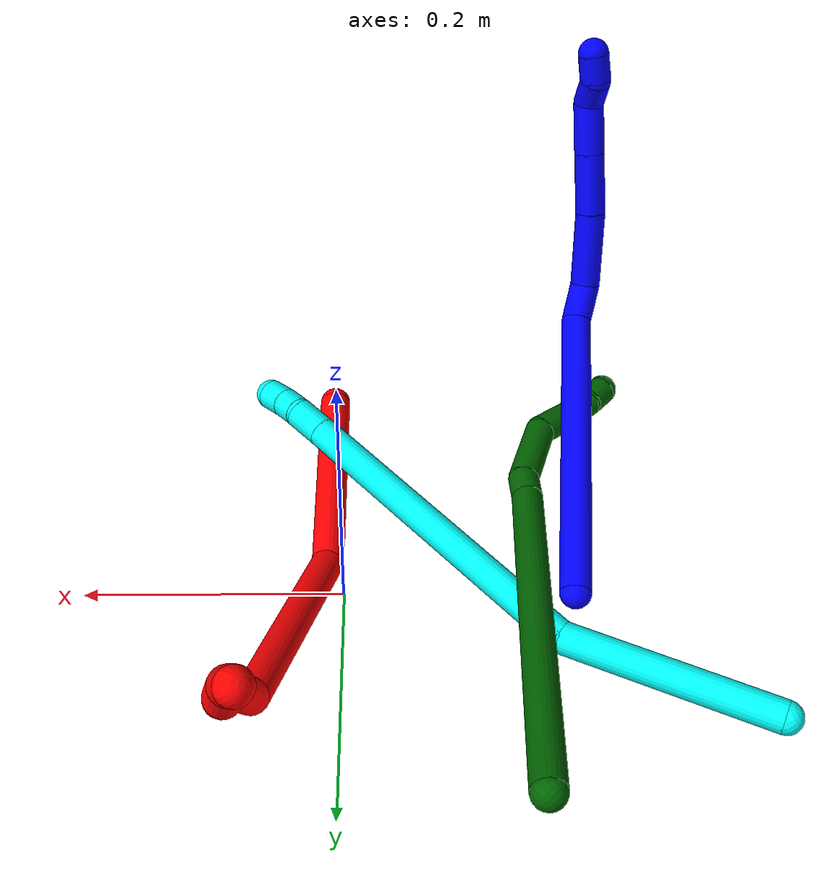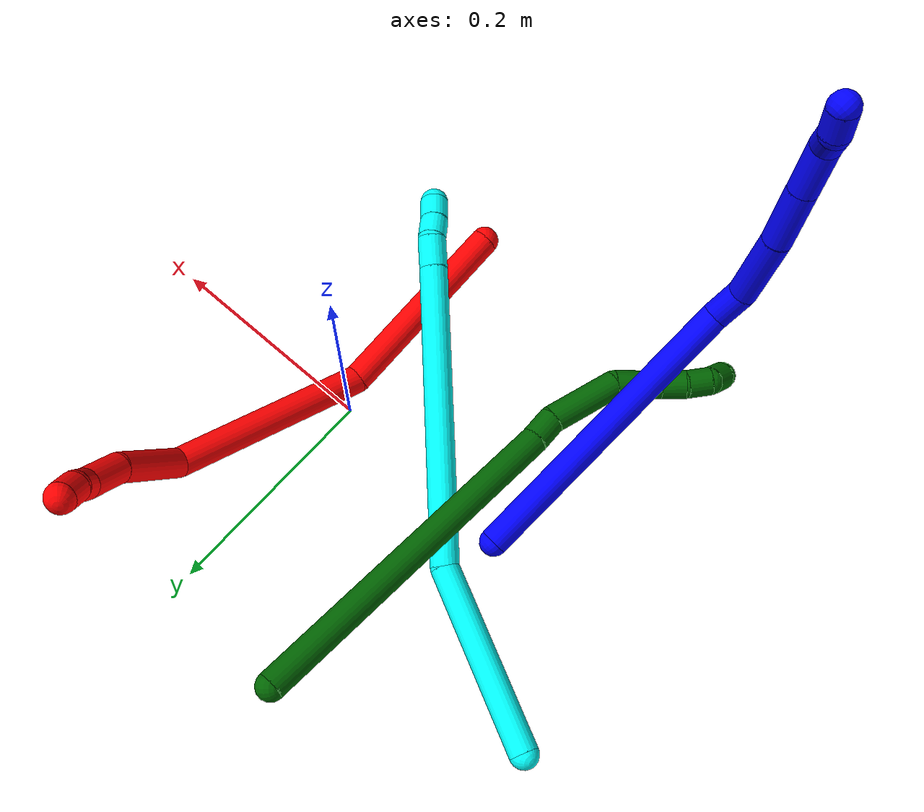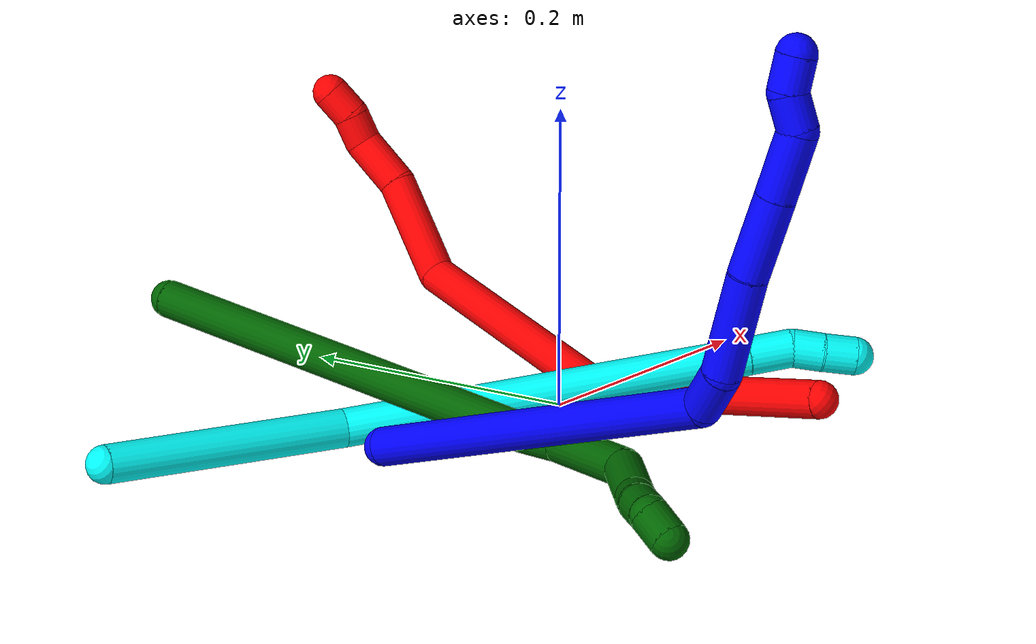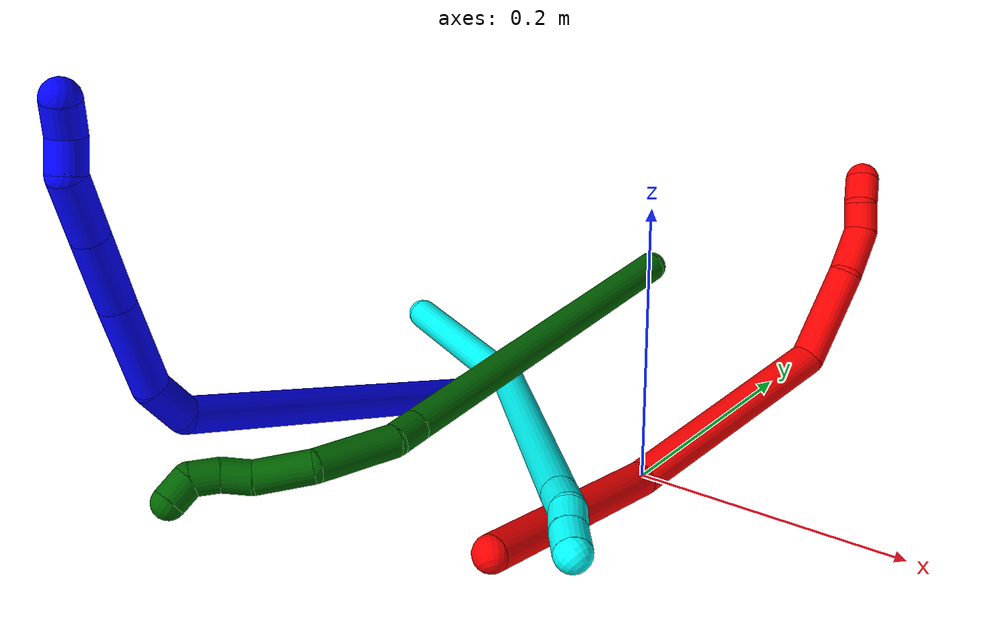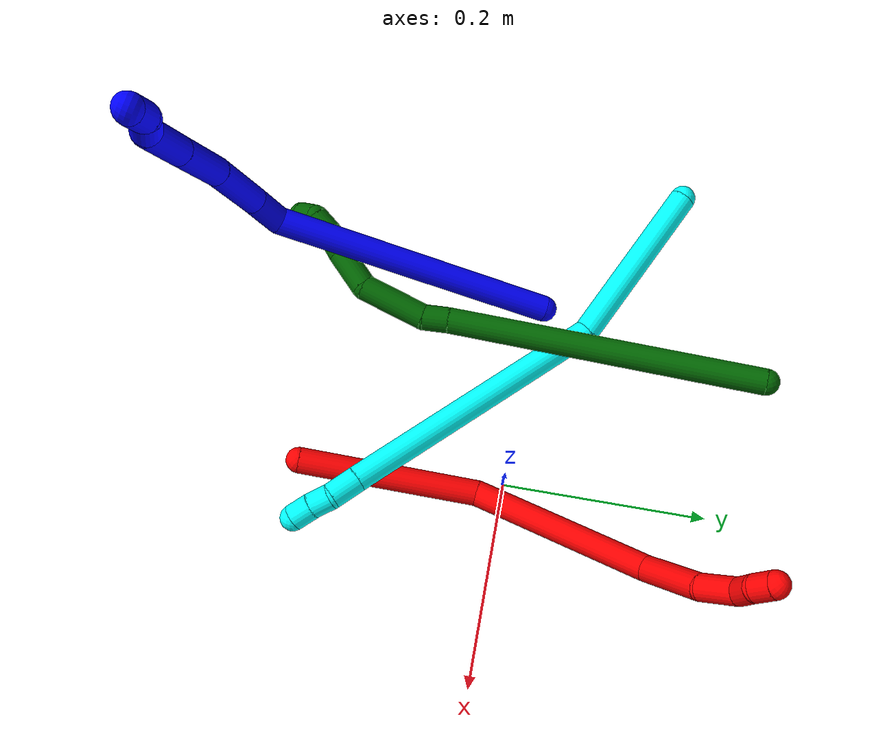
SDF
<sdf version="1.7">
 <world name="default">
  <model name="photoneo_s_sensor">
   <static>1</static>
   <pose>0 0 2 1.57079 1.57079 3.14159</pose>
   <link name="link">
    <inertial><mass>0.1</mass></inertial>
    <sensor name="sensor" type="depth">
     <update_rate>30</update_rate>
     <camera>
      <horizontal_fov>1.22</horizontal_fov>
      <image><width>1920</width><height>1200</height><format>B8G8R8</format></image>
      <clip><near>0.1</near><far>4</far></clip>
      <depth_camera><output>points</output></depth_camera>
     </camera>
     <plugin name="camera_plugin" filename="libgazebo_ros_depth_camera.so">
      <baseline>0.2</baseline>
      <alwaysOn>1</alwaysOn>
      <updateRate>0.0</updateRate>
      <cameraName>camera_ir</cameraName>
      <imageTopicName>/camera/color/image_raw</imageTopicName>
      <cameraInfoTopicName>/camera/color/camera_info</cameraInfoTopicName>
      <depthImageTopicName>/camera/depth/image_raw</depthImageTopicName>
      <depthImageCameraInfoTopicName>/camera/depth/camera_info</depthImageCameraInfoTopicName>
      <pointCloudTopicName>/camera/depth/points</pointCloudTopicName>
      <frameName>fr_optical</frameName>
      <pointCloudCutoff>0.1</pointCloudCutoff>
      <pointCloudCutoffMax>2.0</pointCloudCutoffMax>
      <distortionK1>0</distortionK1>
      <distortionK2>0</distortionK2>
      <distortionK3>0</distortionK3>
      <distortionT1>0</distortionT1>
      <distortionT2>0</distortionT2>
      <CxPrime>0</CxPrime>
      <Cx>0</Cx>
      <Cy>0</Cy>
      <focalLength>0</focalLength>
      <hackBaseline>0</hackBaseline>
     </plugin>
    </sensor>
   </link>
  </model>
  <model name="bin">
   <static>1</static>
   <link name="bottom">
    <collision name="collision-bottom">
     <pose>0 0 -0.01 0 -0 0</pose>
     <geometry><box><size>0.8 0.6 0.02</size></box></geometry>
     <surface>
      <friction><ode><mu>100</mu><mu2>100</mu2></ode></friction>
      <contact><collide_bitmask>65535</collide_bitmask></contact>
     </surface>
    </collision>
   </link>
   <link name="west_wall">
    <collision name="collision-west_wall">
     <pose>-0.41 0 0.1 0 -0 0</pose>
     <geometry><box><size>0.02 0.6 0.2</size></box></geometry>
     <surface>
      <friction><ode><mu>100</mu><mu2>100</mu2></ode></friction>
      <contact><collide_bitmask>65535</collide_bitmask></contact>
     </surface>
    </collision>
   </link>
   <link name="east_wall">
    <collision name="collision-east_wall">
     <pose>0.41 0 0.1 0 -0 0</pose>
     <geometry><box><size>0.02 0.6 0.2</size></box></geometry>
     <surface>
      <friction><ode><mu>100</mu><mu2>100</mu2></ode></friction>
      <contact><collide_bitmask>65535</collide_bitmask></contact>
     </surface>
    </collision>
   </link>
   <link name="south_wall">
    <collision name="collision-south_wall">
     <pose>0 -0.31 0.1 0 -0 0</pose>
     <geometry><box><size>0.8 0.02 0.2</size></box></geometry>
     <surface>
      <friction><ode><mu>100</mu><mu2>100</mu2></ode></friction>
      <contact><collide_bitmask>65535</collide_bitmask></contact>
     </surface>
    </collision>
   </link>
   <link name="north_wall">
    <collision name="collision-north_wall">
     <pose>0 0.31 0.1 0 -0 0</pose>
     <geometry><box><size>0.8 0.02 0.2</size></box></geometry>
     <surface>
      <friction><ode><mu>100</mu><mu2>100</mu2></ode></friction>
      <contact><collide_bitmask>65535</collide_bitmask></contact>
     </surface>
    </collision>
   </link>
  </model>
  <model name="1">
   <static>0</static>
   <link name="1">
    <collision name="collision-cylinder-e_1_1_4">
     <pose>-0.019785 0.003382 0.131124 -0.025787 -0.149706 0.001934</pose>
     <geometry><cylinder><radius>0.0125</radius><length>0.265303</length></cylinder></geometry>
     <surface>
      <friction><ode><mu>1.16</mu><mu2>1.16</mu2><slip1>0</slip1><slip2>0</slip2></ode></friction>
      <contact><ode><kp>1e+06</kp><kd>1</kd><max_vel>0</max_vel><min_depth>0.001</min_depth></ode></contact>
     </surface>
    </collision>
    <visual name="visual-cylinder-e_1_1_4">
     <pose>-0.019785 0.003382 0.131124 -0.025787 -0.149706 0.001934</pose>
     <geometry><cylinder><radius>0.0125</radius><length>0.265303</length></cylinder></geometry>
     <material><ambient>0 0 1 1</ambient></material>
    </visual>
    <collision name="collision-cylinder-e_2_4_5">
     <pose>-0.032848 0.002767 0.27614 0.280189 0.435217 0.062341</pose>
     <geometry><cylinder><radius>0.0125</radius><length>0.031883</length></cylinder></geometry>
     <surface>
      <friction><ode><mu>1.16</mu><mu2>1.16</mu2><slip1>0</slip1><slip2>0</slip2></ode></friction>
      <contact><ode><kp>1e+06</kp><kd>1</kd><max_vel>0</max_vel><min_depth>0.001</min_depth></ode></contact>
     </surface>
    </collision>
    <visual name="visual-cylinder-e_2_4_5">
     <pose>-0.032848 0.002767 0.27614 0.280189 0.435217 0.062341</pose>
     <geometry><cylinder><radius>0.0125</radius><length>0.031883</length></cylinder></geometry>
     <material><ambient>0 0 1 1</ambient></material>
    </visual>
    <collision name="collision-cylinder-e_3_5_6">
     <pose>-0.009481 -0.019643 0.310573 0.730786 0.542935 0.21217</pose>
     <geometry><cylinder><radius>0.0125</radius><length>0.064437</length></cylinder></geometry>
     <surface>
      <friction><ode><mu>1.16</mu><mu2>1.16</mu2><slip1>0</slip1><slip2>0</slip2></ode></friction>
      <contact><ode><kp>1e+06</kp><kd>1</kd><max_vel>0</max_vel><min_depth>0.001</min_depth></ode></contact>
     </surface>
    </collision>
    <visual name="visual-cylinder-e_3_5_6">
     <pose>-0.009481 -0.019643 0.310573 0.730786 0.542935 0.21217</pose>
     <geometry><cylinder><radius>0.0125</radius><length>0.064437</length></cylinder></geometry>
     <material><ambient>0 0 1 1</ambient></material>
    </visual>
    <collision name="collision-cylinder-e_4_6_7">
     <pose>0.01834 -0.053978 0.347511 0.77076 0.454784 0.187188</pose>
     <geometry><cylinder><radius>0.0125</radius><length>0.050884</length></cylinder></geometry>
     <surface>
      <friction><ode><mu>1.16</mu><mu2>1.16</mu2><slip1>0</slip1><slip2>0</slip2></ode></friction>
      <contact><ode><kp>1e+06</kp><kd>1</kd><max_vel>0</max_vel><min_depth>0.001</min_depth></ode></contact>
     </surface>
    </collision>
    <visual name="visual-cylinder-e_4_6_7">
     <pose>0.01834 -0.053978 0.347511 0.77076 0.454784 0.187188</pose>
     <geometry><cylinder><radius>0.0125</radius><length>0.050884</length></cylinder></geometry>
     <material><ambient>0 0 1 1</ambient></material>
    </visual>
    <collision name="collision-cylinder-e_5_7_8">
     <pose>0.038908 -0.083073 0.377385 0.773901 0.462323 0.191238</pose>
     <geometry><cylinder><radius>0.0125</radius><length>0.042112</length></cylinder></geometry>
     <surface>
      <friction><ode><mu>1.16</mu><mu2>1.16</mu2><slip1>0</slip1><slip2>0</slip2></ode></friction>
      <contact><ode><kp>1e+06</kp><kd>1</kd><max_vel>0</max_vel><min_depth>0.001</min_depth></ode></contact>
     </surface>
    </collision>
    <visual name="visual-cylinder-e_5_7_8">
     <pose>0.038908 -0.083073 0.377385 0.773901 0.462323 0.191238</pose>
     <geometry><cylinder><radius>0.0125</radius><length>0.042112</length></cylinder></geometry>
     <material><ambient>0 0 1 1</ambient></material>
    </visual>
    <collision name="collision-cylinder-e_6_8_9">
     <pose>0.05748 -0.102741 0.39299 1.2544 0.930822 0.698217</pose>
     <geometry><cylinder><radius>0.0125</radius><length>0.022892</length></cylinder></geometry>
     <surface>
      <friction><ode><mu>1.16</mu><mu2>1.16</mu2><slip1>0</slip1><slip2>0</slip2></ode></friction>
      <contact><ode><kp>1e+06</kp><kd>1</kd><max_vel>0</max_vel><min_depth>0.001</min_depth></ode></contact>
     </surface>
    </collision>
    <visual name="visual-cylinder-e_6_8_9">
     <pose>0.05748 -0.102741 0.39299 1.2544 0.930822 0.698217</pose>
     <geometry><cylinder><radius>0.0125</radius><length>0.022892</length></cylinder></geometry>
     <material><ambient>0 0 1 1</ambient></material>
    </visual>
    <collision name="collision-cylinder-e_7_9_2">
     <pose>0.071925 -0.117484 0.400658 0.979176 0.487222 0.263349</pose>
     <geometry><cylinder><radius>0.0125</radius><length>0.02249</length></cylinder></geometry>
     <surface>
      <friction><ode><mu>1.16</mu><mu2>1.16</mu2><slip1>0</slip1><slip2>0</slip2></ode></friction>
      <contact><ode><kp>1e+06</kp><kd>1</kd><max_vel>0</max_vel><min_depth>0.001</min_depth></ode></contact>
     </surface>
    </collision>
    <visual name="visual-cylinder-e_7_9_2">
     <pose>0.071925 -0.117484 0.400658 0.979176 0.487222 0.263349</pose>
     <geometry><cylinder><radius>0.0125</radius><length>0.02249</length></cylinder></geometry>
     <material><ambient>0 0 1 1</ambient></material>
    </visual>
    <collision name="collision-sphere-2">
     <pose>0.07719 -0.125732 0.4062 0 -0 0</pose>
     <geometry><sphere><radius>0.0125</radius></sphere></geometry>
     <surface>
      <friction><ode><mu>1.16</mu><mu2>1.16</mu2><slip1>0</slip1><slip2>0</slip2></ode></friction>
      <contact><ode><kp>1e+06</kp><kd>1</kd><max_vel>0</max_vel><min_depth>0.001</min_depth></ode></contact>
     </surface>
    </collision>
    <visual name="visual-sphere-2">
     <pose>0.07719 -0.125732 0.4062 0 -0 0</pose>
     <geometry><sphere><radius>0.0125</radius></sphere></geometry>
     <material><ambient>0 0 1 1</ambient></material>
    </visual>
    <collision name="collision-sphere-9">
     <pose>0.066661 -0.109237 0.395117 0 -0 0</pose>
     <geometry><sphere><radius>0.0125</radius></sphere></geometry>
     <surface>
      <friction><ode><mu>1.16</mu><mu2>1.16</mu2><slip1>0</slip1><slip2>0</slip2></ode></friction>
      <contact><ode><kp>1e+06</kp><kd>1</kd><max_vel>0</max_vel><min_depth>0.001</min_depth></ode></contact>
     </surface>
    </collision>
    <visual name="visual-sphere-9">
     <pose>0.066661 -0.109237 0.395117 0 -0 0</pose>
     <geometry><sphere><radius>0.0125</radius></sphere></geometry>
     <material><ambient>0 0 1 1</ambient></material>
    </visual>
    <collision name="collision-sphere-4">
     <pose>-0.039569 0.006764 0.262248 0 -0 0</pose>
     <geometry><sphere><radius>0.0125</radius></sphere></geometry>
     <surface>
      <friction><ode><mu>1.16</mu><mu2>1.16</mu2><slip1>0</slip1><slip2>0</slip2></ode></friction>
      <contact><ode><kp>1e+06</kp><kd>1</kd><max_vel>0</max_vel><min_depth>0.001</min_depth></ode></contact>
     </surface>
    </collision>
    <visual name="visual-sphere-4">
     <pose>-0.039569 0.006764 0.262248 0 -0 0</pose>
     <geometry><sphere><radius>0.0125</radius></sphere></geometry>
     <material><ambient>0 0 1 1</ambient></material>
    </visual>
    <collision name="collision-sphere-1">
     <geometry><sphere><radius>0.0125</radius></sphere></geometry>
     <surface>
      <friction><ode><mu>1.16</mu><mu2>1.16</mu2><slip1>0</slip1><slip2>0</slip2></ode></friction>
      <contact><ode><kp>1e+06</kp><kd>1</kd><max_vel>0</max_vel><min_depth>0.001</min_depth></ode></contact>
     </surface>
    </collision>
    <visual name="visual-sphere-1">
     <geometry><sphere><radius>0.0125</radius></sphere></geometry>
     <material><ambient>0 0 1 1</ambient></material>
    </visual>
    <collision name="collision-sphere-8">
     <pose>0.048299 -0.096245 0.390863 0 -0 0</pose>
     <geometry><sphere><radius>0.0125</radius></sphere></geometry>
     <surface>
      <friction><ode><mu>1.16</mu><mu2>1.16</mu2><slip1>0</slip1><slip2>0</slip2></ode></friction>
      <contact><ode><kp>1e+06</kp><kd>1</kd><max_vel>0</max_vel><min_depth>0.001</min_depth></ode></contact>
     </surface>
    </collision>
    <visual name="visual-sphere-8">
     <pose>0.048299 -0.096245 0.390863 0 -0 0</pose>
     <geometry><sphere><radius>0.0125</radius></sphere></geometry>
     <material><ambient>0 0 1 1</ambient></material>
    </visual>
    <collision name="collision-sphere-5">
     <pose>-0.026127 -0.001231 0.290031 0 -0 0</pose>
     <geometry><sphere><radius>0.0125</radius></sphere></geometry>
     <surface>
      <friction><ode><mu>1.16</mu><mu2>1.16</mu2><slip1>0</slip1><slip2>0</slip2></ode></friction>
      <contact><ode><kp>1e+06</kp><kd>1</kd><max_vel>0</max_vel><min_depth>0.001</min_depth></ode></contact>
     </surface>
    </collision>
    <visual name="visual-sphere-5">
     <pose>-0.026127 -0.001231 0.290031 0 -0 0</pose>
     <geometry><sphere><radius>0.0125</radius></sphere></geometry>
     <material><ambient>0 0 1 1</ambient></material>
    </visual>
    <collision name="collision-sphere-6">
     <pose>0.007164 -0.038055 0.331114 0 -0 0</pose>
     <geometry><sphere><radius>0.0125</radius></sphere></geometry>
     <surface>
      <friction><ode><mu>1.16</mu><mu2>1.16</mu2><slip1>0</slip1><slip2>0</slip2></ode></friction>
      <contact><ode><kp>1e+06</kp><kd>1</kd><max_vel>0</max_vel><min_depth>0.001</min_depth></ode></contact>
     </surface>
    </collision>
    <visual name="visual-sphere-6">
     <pose>0.007164 -0.038055 0.331114 0 -0 0</pose>
     <geometry><sphere><radius>0.0125</radius></sphere></geometry>
     <material><ambient>0 0 1 1</ambient></material>
    </visual>
    <collision name="collision-sphere-7">
     <pose>0.029516 -0.069901 0.363907 0 -0 0</pose>
     <geometry><sphere><radius>0.0125</radius></sphere></geometry>
     <surface>
      <friction><ode><mu>1.16</mu><mu2>1.16</mu2><slip1>0</slip1><slip2>0</slip2></ode></friction>
      <contact><ode><kp>1e+06</kp><kd>1</kd><max_vel>0</max_vel><min_depth>0.001</min_depth></ode></contact>
     </surface>
    </collision>
    <visual name="visual-sphere-7">
     <pose>0.029516 -0.069901 0.363907 0 -0 0</pose>
     <geometry><sphere><radius>0.0125</radius></sphere></geometry>
     <material><ambient>0 0 1 1</ambient></material>
    </visual>
    <inertial>
     <pose>-0.002804 -0.023039 0.230372 0 -0 0</pose>
     <mass>0.5</mass>
     <inertia>
      <ixx>0.001612</ixx>
      <ixy>0</ixy>
      <ixz>0</ixz>
      <iyy>0.001611</iyy>
      <iyz>0</iyz>
      <izz>0.00023</izz>
     </inertia>
    </inertial>
   </link>
   <pose>-0.176759 0.010857 0.011966 -1.02579 -0.696645 2.58673</pose>
  </model>
  <model name="2">
   <static>0</static>
   <link name="2">
    <collision name="collision-cylinder-e_1_1_4">
     <pose>0.029544 0.073517 -0.034599 -2.01067 0.348744 -0.541565</pose>
     <geometry><cylinder><radius>0.0125</radius><length>0.172913</length></cylinder></geometry>
     <surface>
      <friction><ode><mu>1.16</mu><mu2>1.16</mu2><slip1>0</slip1><slip2>0</slip2></ode></friction>
      <contact><ode><kp>1e+06</kp><kd>1</kd><max_vel>0</max_vel><min_depth>0.001</min_depth></ode></contact>
     </surface>
    </collision>
    <visual name="visual-cylinder-e_1_1_4">
     <pose>0.029544 0.073517 -0.034599 -2.01067 0.348744 -0.541565</pose>
     <geometry><cylinder><radius>0.0125</radius><length>0.172913</length></cylinder></geometry>
     <material><ambient>1 0 0 1</ambient></material>
    </visual>
    <collision name="collision-cylinder-e_2_4_5">
     <pose>0.050005 0.22415 -0.111488 -2.07241 -0.102897 0.173501</pose>
     <geometry><cylinder><radius>0.0125</radius><length>0.176836</length></cylinder></geometry>
     <surface>
      <friction><ode><mu>1.16</mu><mu2>1.16</mu2><slip1>0</slip1><slip2>0</slip2></ode></friction>
      <contact><ode><kp>1e+06</kp><kd>1</kd><max_vel>0</max_vel><min_depth>0.001</min_depth></ode></contact>
     </surface>
    </collision>
    <visual name="visual-cylinder-e_2_4_5">
     <pose>0.050005 0.22415 -0.111488 -2.07241 -0.102897 0.173501</pose>
     <geometry><cylinder><radius>0.0125</radius><length>0.176836</length></cylinder></geometry>
     <material><ambient>1 0 0 1</ambient></material>
    </visual>
    <collision name="collision-cylinder-e_3_5_6">
     <pose>0.021902 0.315458 -0.179932 -2.64438 -0.568767 1.71136</pose>
     <geometry><cylinder><radius>0.0125</radius><length>0.070633</length></cylinder></geometry>
     <surface>
      <friction><ode><mu>1.16</mu><mu2>1.16</mu2><slip1>0</slip1><slip2>0</slip2></ode></friction>
      <contact><ode><kp>1e+06</kp><kd>1</kd><max_vel>0</max_vel><min_depth>0.001</min_depth></ode></contact>
     </surface>
    </collision>
    <visual name="visual-cylinder-e_3_5_6">
     <pose>0.021902 0.315458 -0.179932 -2.64438 -0.568767 1.71136</pose>
     <geometry><cylinder><radius>0.0125</radius><length>0.070633</length></cylinder></geometry>
     <material><ambient>1 0 0 1</ambient></material>
    </visual>
    <collision name="collision-cylinder-e_4_6_7">
     <pose>-0.002468 0.338635 -0.221701 -2.61953 -0.288637 0.996525</pose>
     <geometry><cylinder><radius>0.0125</radius><length>0.037584</length></cylinder></geometry>
     <surface>
      <friction><ode><mu>1.16</mu><mu2>1.16</mu2><slip1>0</slip1><slip2>0</slip2></ode></friction>
      <contact><ode><kp>1e+06</kp><kd>1</kd><max_vel>0</max_vel><min_depth>0.001</min_depth></ode></contact>
     </surface>
    </collision>
    <visual name="visual-cylinder-e_4_6_7">
     <pose>-0.002468 0.338635 -0.221701 -2.61953 -0.288637 0.996525</pose>
     <geometry><cylinder><radius>0.0125</radius><length>0.037584</length></cylinder></geometry>
     <material><ambient>1 0 0 1</ambient></material>
    </visual>
    <collision name="collision-cylinder-e_5_7_8">
     <pose>-0.01278 0.347723 -0.246813 -3.13057 -0.481511 3.09672</pose>
     <geometry><cylinder><radius>0.0125</radius><length>0.021433</length></cylinder></geometry>
     <surface>
      <friction><ode><mu>1.16</mu><mu2>1.16</mu2><slip1>0</slip1><slip2>0</slip2></ode></friction>
      <contact><ode><kp>1e+06</kp><kd>1</kd><max_vel>0</max_vel><min_depth>0.001</min_depth></ode></contact>
     </surface>
    </collision>
    <visual name="visual-cylinder-e_5_7_8">
     <pose>-0.01278 0.347723 -0.246813 -3.13057 -0.481511 3.09672</pose>
     <geometry><cylinder><radius>0.0125</radius><length>0.021433</length></cylinder></geometry>
     <material><ambient>1 0 0 1</ambient></material>
    </visual>
    <collision name="collision-cylinder-e_6_8_2">
     <pose>-0.020039 0.35043 -0.266009 -2.87937 -0.224765 1.41575</pose>
     <geometry><cylinder><radius>0.0125</radius><length>0.020601</length></cylinder></geometry>
     <surface>
      <friction><ode><mu>1.16</mu><mu2>1.16</mu2><slip1>0</slip1><slip2>0</slip2></ode></friction>
      <contact><ode><kp>1e+06</kp><kd>1</kd><max_vel>0</max_vel><min_depth>0.001</min_depth></ode></contact>
     </surface>
    </collision>
    <visual name="visual-cylinder-e_6_8_2">
     <pose>-0.020039 0.35043 -0.266009 -2.87937 -0.224765 1.41575</pose>
     <geometry><cylinder><radius>0.0125</radius><length>0.020601</length></cylinder></geometry>
     <material><ambient>1 0 0 1</ambient></material>
    </visual>
    <collision name="collision-sphere-2">
     <pose>-0.022335 0.353033 -0.275707 0 -0 0</pose>
     <geometry><sphere><radius>0.0125</radius></sphere></geometry>
     <surface>
      <friction><ode><mu>1.16</mu><mu2>1.16</mu2><slip1>0</slip1><slip2>0</slip2></ode></friction>
      <contact><ode><kp>1e+06</kp><kd>1</kd><max_vel>0</max_vel><min_depth>0.001</min_depth></ode></contact>
     </surface>
    </collision>
    <visual name="visual-sphere-2">
     <pose>-0.022335 0.353033 -0.275707 0 -0 0</pose>
     <geometry><sphere><radius>0.0125</radius></sphere></geometry>
     <material><ambient>1 0 0 1</ambient></material>
    </visual>
    <collision name="collision-sphere-4">
     <pose>0.059087 0.147034 -0.069198 0 -0 0</pose>
     <geometry><sphere><radius>0.0125</radius></sphere></geometry>
     <surface>
      <friction><ode><mu>1.16</mu><mu2>1.16</mu2><slip1>0</slip1><slip2>0</slip2></ode></friction>
      <contact><ode><kp>1e+06</kp><kd>1</kd><max_vel>0</max_vel><min_depth>0.001</min_depth></ode></contact>
     </surface>
    </collision>
    <visual name="visual-sphere-4">
     <pose>0.059087 0.147034 -0.069198 0 -0 0</pose>
     <geometry><sphere><radius>0.0125</radius></sphere></geometry>
     <material><ambient>1 0 0 1</ambient></material>
    </visual>
    <collision name="collision-sphere-1">
     <geometry><sphere><radius>0.0125</radius></sphere></geometry>
     <surface>
      <friction><ode><mu>1.16</mu><mu2>1.16</mu2><slip1>0</slip1><slip2>0</slip2></ode></friction>
      <contact><ode><kp>1e+06</kp><kd>1</kd><max_vel>0</max_vel><min_depth>0.001</min_depth></ode></contact>
     </surface>
    </collision>
    <visual name="visual-sphere-1">
     <geometry><sphere><radius>0.0125</radius></sphere></geometry>
     <material><ambient>1 0 0 1</ambient></material>
    </visual>
    <collision name="collision-sphere-8">
     <pose>-0.017744 0.347827 -0.256311 0 -0 0</pose>
     <geometry><sphere><radius>0.0125</radius></sphere></geometry>
     <surface>
      <friction><ode><mu>1.16</mu><mu2>1.16</mu2><slip1>0</slip1><slip2>0</slip2></ode></friction>
      <contact><ode><kp>1e+06</kp><kd>1</kd><max_vel>0</max_vel><min_depth>0.001</min_depth></ode></contact>
     </surface>
    </collision>
    <visual name="visual-sphere-8">
     <pose>-0.017744 0.347827 -0.256311 0 -0 0</pose>
     <geometry><sphere><radius>0.0125</radius></sphere></geometry>
     <material><ambient>1 0 0 1</ambient></material>
    </visual>
    <collision name="collision-sphere-5">
     <pose>0.040923 0.301265 -0.153779 0 -0 0</pose>
     <geometry><sphere><radius>0.0125</radius></sphere></geometry>
     <surface>
      <friction><ode><mu>1.16</mu><mu2>1.16</mu2><slip1>0</slip1><slip2>0</slip2></ode></friction>
      <contact><ode><kp>1e+06</kp><kd>1</kd><max_vel>0</max_vel><min_depth>0.001</min_depth></ode></contact>
     </surface>
    </collision>
    <visual name="visual-sphere-5">
     <pose>0.040923 0.301265 -0.153779 0 -0 0</pose>
     <geometry><sphere><radius>0.0125</radius></sphere></geometry>
     <material><ambient>1 0 0 1</ambient></material>
    </visual>
    <collision name="collision-sphere-6">
     <pose>0.002881 0.329651 -0.206086 0 -0 0</pose>
     <geometry><sphere><radius>0.0125</radius></sphere></geometry>
     <surface>
      <friction><ode><mu>1.16</mu><mu2>1.16</mu2><slip1>0</slip1><slip2>0</slip2></ode></friction>
      <contact><ode><kp>1e+06</kp><kd>1</kd><max_vel>0</max_vel><min_depth>0.001</min_depth></ode></contact>
     </surface>
    </collision>
    <visual name="visual-sphere-6">
     <pose>0.002881 0.329651 -0.206086 0 -0 0</pose>
     <geometry><sphere><radius>0.0125</radius></sphere></geometry>
     <material><ambient>1 0 0 1</ambient></material>
    </visual>
    <collision name="collision-sphere-7">
     <pose>-0.007817 0.347618 -0.237316 0 -0 0</pose>
     <geometry><sphere><radius>0.0125</radius></sphere></geometry>
     <surface>
      <friction><ode><mu>1.16</mu><mu2>1.16</mu2><slip1>0</slip1><slip2>0</slip2></ode></friction>
      <contact><ode><kp>1e+06</kp><kd>1</kd><max_vel>0</max_vel><min_depth>0.001</min_depth></ode></contact>
     </surface>
    </collision>
    <visual name="visual-sphere-7">
     <pose>-0.007817 0.347618 -0.237316 0 -0 0</pose>
     <geometry><sphere><radius>0.0125</radius></sphere></geometry>
     <material><ambient>1 0 0 1</ambient></material>
    </visual>
    <inertial>
     <pose>0.029437 0.204062 -0.115019 0 -0 0</pose>
     <mass>0.5</mass>
     <inertia>
      <ixx>0.000708</ixx>
      <ixy>0</ixy>
      <ixz>0</ixz>
      <iyy>-0.000364</iyy>
      <iyz>0</iyz>
      <izz>-0.000899</izz>
     </inertia>
    </inertial>
   </link>
   <pose>0.01106 -0.194379 0.033839 -2.9087 0.850028 2.74911</pose>
  </model>
  <model name="3">
   <static>0</static>
   <link name="3">
    <collision name="collision-cylinder-e_1_1_4">
     <pose>0.051144 -0.016386 -0.062534 2.88532 0.669323 2.43192</pose>
     <geometry><cylinder><radius>0.0125</radius><length>0.16486</length></cylinder></geometry>
     <surface>
      <friction><ode><mu>1.16</mu><mu2>1.16</mu2><slip1>0</slip1><slip2>0</slip2></ode></friction>
      <contact><ode><kp>1e+06</kp><kd>1</kd><max_vel>0</max_vel><min_depth>0.001</min_depth></ode></contact>
     </surface>
    </collision>
    <visual name="visual-cylinder-e_1_1_4">
     <pose>0.051144 -0.016386 -0.062534 2.88532 0.669323 2.43192</pose>
     <geometry><cylinder><radius>0.0125</radius><length>0.16486</length></cylinder></geometry>
     <material><ambient>0.003922 1 0.996078 1</ambient></material>
    </visual>
    <collision name="collision-cylinder-e_2_4_5">
     <pose>0.19457 -0.097241 -0.194976 2.39666 0.770374 1.60781</pose>
     <geometry><cylinder><radius>0.0125</radius><length>0.265023</length></cylinder></geometry>
     <surface>
      <friction><ode><mu>1.16</mu><mu2>1.16</mu2><slip1>0</slip1><slip2>0</slip2></ode></friction>
      <contact><ode><kp>1e+06</kp><kd>1</kd><max_vel>0</max_vel><min_depth>0.001</min_depth></ode></contact>
     </surface>
    </collision>
    <visual name="visual-cylinder-e_2_4_5">
     <pose>0.19457 -0.097241 -0.194976 2.39666 0.770374 1.60781</pose>
     <geometry><cylinder><radius>0.0125</radius><length>0.265023</length></cylinder></geometry>
     <material><ambient>0.003922 1 0.996078 1</ambient></material>
    </visual>
    <collision name="collision-cylinder-e_3_5_6">
     <pose>0.296975 -0.168474 -0.272615 2.42269 0.778148 1.65778</pose>
     <geometry><cylinder><radius>0.0125</radius><length>0.028845</length></cylinder></geometry>
     <surface>
      <friction><ode><mu>1.16</mu><mu2>1.16</mu2><slip1>0</slip1><slip2>0</slip2></ode></friction>
      <contact><ode><kp>1e+06</kp><kd>1</kd><max_vel>0</max_vel><min_depth>0.001</min_depth></ode></contact>
     </surface>
    </collision>
    <visual name="visual-cylinder-e_3_5_6">
     <pose>0.296975 -0.168474 -0.272615 2.42269 0.778148 1.65778</pose>
     <geometry><cylinder><radius>0.0125</radius><length>0.028845</length></cylinder></geometry>
     <material><ambient>0.003922 1 0.996078 1</ambient></material>
    </visual>
    <collision name="collision-cylinder-e_4_6_7">
     <pose>0.311557 -0.181892 -0.286589 2.32453 0.454447 0.981148</pose>
     <geometry><cylinder><radius>0.0125</radius><length>0.020309</length></cylinder></geometry>
     <surface>
      <friction><ode><mu>1.16</mu><mu2>1.16</mu2><slip1>0</slip1><slip2>0</slip2></ode></friction>
      <contact><ode><kp>1e+06</kp><kd>1</kd><max_vel>0</max_vel><min_depth>0.001</min_depth></ode></contact>
     </surface>
    </collision>
    <visual name="visual-cylinder-e_4_6_7">
     <pose>0.311557 -0.181892 -0.286589 2.32453 0.454447 0.981148</pose>
     <geometry><cylinder><radius>0.0125</radius><length>0.020309</length></cylinder></geometry>
     <material><ambient>0.003922 1 0.996078 1</ambient></material>
    </visual>
    <collision name="collision-cylinder-e_5_7_2">
     <pose>0.320925 -0.194551 -0.29988 2.43568 0.487629 1.1879</pose>
     <geometry><cylinder><radius>0.0125</radius><length>0.020963</length></cylinder></geometry>
     <surface>
      <friction><ode><mu>1.16</mu><mu2>1.16</mu2><slip1>0</slip1><slip2>0</slip2></ode></friction>
      <contact><ode><kp>1e+06</kp><kd>1</kd><max_vel>0</max_vel><min_depth>0.001</min_depth></ode></contact>
     </surface>
    </collision>
    <visual name="visual-cylinder-e_5_7_2">
     <pose>0.320925 -0.194551 -0.29988 2.43568 0.487629 1.1879</pose>
     <geometry><cylinder><radius>0.0125</radius><length>0.020963</length></cylinder></geometry>
     <material><ambient>0.003922 1 0.996078 1</ambient></material>
    </visual>
    <collision name="collision-sphere-2">
     <pose>0.325836 -0.200558 -0.306927 0 -0 0</pose>
     <geometry><sphere><radius>0.0125</radius></sphere></geometry>
     <surface>
      <friction><ode><mu>1.16</mu><mu2>1.16</mu2><slip1>0</slip1><slip2>0</slip2></ode></friction>
      <contact><ode><kp>1e+06</kp><kd>1</kd><max_vel>0</max_vel><min_depth>0.001</min_depth></ode></contact>
     </surface>
    </collision>
    <visual name="visual-sphere-2">
     <pose>0.325836 -0.200558 -0.306927 0 -0 0</pose>
     <geometry><sphere><radius>0.0125</radius></sphere></geometry>
     <material><ambient>0.003922 1 0.996078 1</ambient></material>
    </visual>
    <collision name="collision-sphere-7">
     <pose>0.316014 -0.188544 -0.292833 0 -0 0</pose>
     <geometry><sphere><radius>0.0125</radius></sphere></geometry>
     <surface>
      <friction><ode><mu>1.16</mu><mu2>1.16</mu2><slip1>0</slip1><slip2>0</slip2></ode></friction>
      <contact><ode><kp>1e+06</kp><kd>1</kd><max_vel>0</max_vel><min_depth>0.001</min_depth></ode></contact>
     </surface>
    </collision>
    <visual name="visual-sphere-7">
     <pose>0.316014 -0.188544 -0.292833 0 -0 0</pose>
     <geometry><sphere><radius>0.0125</radius></sphere></geometry>
     <material><ambient>0.003922 1 0.996078 1</ambient></material>
    </visual>
    <collision name="collision-sphere-6">
     <pose>0.307099 -0.175239 -0.280345 0 -0 0</pose>
     <geometry><sphere><radius>0.0125</radius></sphere></geometry>
     <surface>
      <friction><ode><mu>1.16</mu><mu2>1.16</mu2><slip1>0</slip1><slip2>0</slip2></ode></friction>
      <contact><ode><kp>1e+06</kp><kd>1</kd><max_vel>0</max_vel><min_depth>0.001</min_depth></ode></contact>
     </surface>
    </collision>
    <visual name="visual-sphere-6">
     <pose>0.307099 -0.175239 -0.280345 0 -0 0</pose>
     <geometry><sphere><radius>0.0125</radius></sphere></geometry>
     <material><ambient>0.003922 1 0.996078 1</ambient></material>
    </visual>
    <collision name="collision-sphere-5">
     <pose>0.286851 -0.16171 -0.264885 0 -0 0</pose>
     <geometry><sphere><radius>0.0125</radius></sphere></geometry>
     <surface>
      <friction><ode><mu>1.16</mu><mu2>1.16</mu2><slip1>0</slip1><slip2>0</slip2></ode></friction>
      <contact><ode><kp>1e+06</kp><kd>1</kd><max_vel>0</max_vel><min_depth>0.001</min_depth></ode></contact>
     </surface>
    </collision>
    <visual name="visual-sphere-5">
     <pose>0.286851 -0.16171 -0.264885 0 -0 0</pose>
     <geometry><sphere><radius>0.0125</radius></sphere></geometry>
     <material><ambient>0.003922 1 0.996078 1</ambient></material>
    </visual>
    <collision name="collision-sphere-1">
     <geometry><sphere><radius>0.0125</radius></sphere></geometry>
     <surface>
      <friction><ode><mu>1.16</mu><mu2>1.16</mu2><slip1>0</slip1><slip2>0</slip2></ode></friction>
      <contact><ode><kp>1e+06</kp><kd>1</kd><max_vel>0</max_vel><min_depth>0.001</min_depth></ode></contact>
     </surface>
    </collision>
    <visual name="visual-sphere-1">
     <geometry><sphere><radius>0.0125</radius></sphere></geometry>
     <material><ambient>0.003922 1 0.996078 1</ambient></material>
    </visual>
    <collision name="collision-sphere-4">
     <pose>0.102288 -0.032773 -0.125067 0 -0 0</pose>
     <geometry><sphere><radius>0.0125</radius></sphere></geometry>
     <surface>
      <friction><ode><mu>1.16</mu><mu2>1.16</mu2><slip1>0</slip1><slip2>0</slip2></ode></friction>
      <contact><ode><kp>1e+06</kp><kd>1</kd><max_vel>0</max_vel><min_depth>0.001</min_depth></ode></contact>
     </surface>
    </collision>
    <visual name="visual-sphere-4">
     <pose>0.102288 -0.032773 -0.125067 0 -0 0</pose>
     <geometry><sphere><radius>0.0125</radius></sphere></geometry>
     <material><ambient>0.003922 1 0.996078 1</ambient></material>
    </visual>
    <inertial>
     <pose>0.163237 -0.082209 -0.163906 0 -0 0</pose>
     <mass>0.5</mass>
     <inertia>
      <ixx>0.001078</ixx>
      <ixy>0</ixy>
      <ixz>0</ixz>
      <iyy>0.002401</iyy>
      <iyz>0</iyz>
      <izz>-0.000512</izz>
     </inertia>
    </inertial>
   </link>
   <pose>-0.308841 0.128097 0.011555 0.327067 -0.906906 -0.511739</pose>
  </model>
  <model name="6">
   <static>0</static>
   <link name="6">
    <collision name="collision-cylinder-e_1_1_4">
     <pose>-0.031466 -0.138398 0.05395 1.1991 -0.208747 -0.14295</pose>
     <geometry><cylinder><radius>0.0125</radius><length>0.303675</length></cylinder></geometry>
     <surface>
      <friction><ode><mu>1.16</mu><mu2>1.16</mu2><slip1>0</slip1><slip2>0</slip2></ode></friction>
      <contact><ode><kp>1e+06</kp><kd>1</kd><max_vel>0</max_vel><min_depth>0.001</min_depth></ode></contact>
     </surface>
    </collision>
    <visual name="visual-cylinder-e_1_1_4">
     <pose>-0.031466 -0.138398 0.05395 1.1991 -0.208747 -0.14295</pose>
     <geometry><cylinder><radius>0.0125</radius><length>0.303675</length></cylinder></geometry>
     <material><ambient>0 0.392157 0.003922 1</ambient></material>
    </visual>
    <collision name="collision-cylinder-e_2_4_5">
     <pose>-0.06436 -0.288695 0.112079 1.23305 -0.11277 -0.07996</pose>
     <geometry><cylinder><radius>0.0125</radius><length>0.025385</length></cylinder></geometry>
     <surface>
      <friction><ode><mu>1.16</mu><mu2>1.16</mu2><slip1>0</slip1><slip2>0</slip2></ode></friction>
      <contact><ode><kp>1e+06</kp><kd>1</kd><max_vel>0</max_vel><min_depth>0.001</min_depth></ode></contact>
     </surface>
    </collision>
    <visual name="visual-cylinder-e_2_4_5">
     <pose>-0.06436 -0.288695 0.112079 1.23305 -0.11277 -0.07996</pose>
     <geometry><cylinder><radius>0.0125</radius><length>0.025385</length></cylinder></geometry>
     <material><ambient>0 0.392157 0.003922 1</ambient></material>
    </visual>
    <collision name="collision-cylinder-e_3_5_6">
     <pose>-0.073782 -0.325357 0.135407 0.912567 -0.250029 -0.123209</pose>
     <geometry><cylinder><radius>0.0125</radius><length>0.064613</length></cylinder></geometry>
     <surface>
      <friction><ode><mu>1.16</mu><mu2>1.16</mu2><slip1>0</slip1><slip2>0</slip2></ode></friction>
      <contact><ode><kp>1e+06</kp><kd>1</kd><max_vel>0</max_vel><min_depth>0.001</min_depth></ode></contact>
     </surface>
    </collision>
    <visual name="visual-cylinder-e_3_5_6">
     <pose>-0.073782 -0.325357 0.135407 0.912567 -0.250029 -0.123209</pose>
     <geometry><cylinder><radius>0.0125</radius><length>0.064613</length></cylinder></geometry>
     <material><ambient>0 0.392157 0.003922 1</ambient></material>
    </visual>
    <collision name="collision-cylinder-e_4_6_7">
     <pose>-0.093742 -0.358431 0.169904 0.496324 -0.600917 -0.156695</pose>
     <geometry><cylinder><radius>0.0125</radius><length>0.042327</length></cylinder></geometry>
     <surface>
      <friction><ode><mu>1.16</mu><mu2>1.16</mu2><slip1>0</slip1><slip2>0</slip2></ode></friction>
      <contact><ode><kp>1e+06</kp><kd>1</kd><max_vel>0</max_vel><min_depth>0.001</min_depth></ode></contact>
     </surface>
    </collision>
    <visual name="visual-cylinder-e_4_6_7">
     <pose>-0.093742 -0.358431 0.169904 0.496324 -0.600917 -0.156695</pose>
     <geometry><cylinder><radius>0.0125</radius><length>0.042327</length></cylinder></geometry>
     <material><ambient>0 0.392157 0.003922 1</ambient></material>
    </visual>
    <collision name="collision-cylinder-e_5_7_8">
     <pose>-0.109823 -0.369803 0.195071 0.302053 -0.380678 -0.058627</pose>
     <geometry><cylinder><radius>0.0125</radius><length>0.022151</length></cylinder></geometry>
     <surface>
      <friction><ode><mu>1.16</mu><mu2>1.16</mu2><slip1>0</slip1><slip2>0</slip2></ode></friction>
      <contact><ode><kp>1e+06</kp><kd>1</kd><max_vel>0</max_vel><min_depth>0.001</min_depth></ode></contact>
     </surface>
    </collision>
    <visual name="visual-cylinder-e_5_7_8">
     <pose>-0.109823 -0.369803 0.195071 0.302053 -0.380678 -0.058627</pose>
     <geometry><cylinder><radius>0.0125</radius><length>0.022151</length></cylinder></geometry>
     <material><ambient>0 0.392157 0.003922 1</ambient></material>
    </visual>
    <collision name="collision-cylinder-e_6_8_9">
     <pose>-0.118579 -0.378041 0.212948 0.571152 -0.45114 -0.134545</pose>
     <geometry><cylinder><radius>0.0125</radius><length>0.02129</length></cylinder></geometry>
     <surface>
      <friction><ode><mu>1.16</mu><mu2>1.16</mu2><slip1>0</slip1><slip2>0</slip2></ode></friction>
      <contact><ode><kp>1e+06</kp><kd>1</kd><max_vel>0</max_vel><min_depth>0.001</min_depth></ode></contact>
     </surface>
    </collision>
    <visual name="visual-cylinder-e_6_8_9">
     <pose>-0.118579 -0.378041 0.212948 0.571152 -0.45114 -0.134545</pose>
     <geometry><cylinder><radius>0.0125</radius><length>0.02129</length></cylinder></geometry>
     <material><ambient>0 0.392157 0.003922 1</ambient></material>
    </visual>
    <collision name="collision-cylinder-e_7_9_2">
     <pose>-0.129658 -0.391125 0.222319 1.4063 -0.676844 -0.579895</pose>
     <geometry><cylinder><radius>0.0125</radius><length>0.020558</length></cylinder></geometry>
     <surface>
      <friction><ode><mu>1.16</mu><mu2>1.16</mu2><slip1>0</slip1><slip2>0</slip2></ode></friction>
      <contact><ode><kp>1e+06</kp><kd>1</kd><max_vel>0</max_vel><min_depth>0.001</min_depth></ode></contact>
     </surface>
    </collision>
    <visual name="visual-cylinder-e_7_9_2">
     <pose>-0.129658 -0.391125 0.222319 1.4063 -0.676844 -0.579895</pose>
     <geometry><cylinder><radius>0.0125</radius><length>0.020558</length></cylinder></geometry>
     <material><ambient>0 0.392157 0.003922 1</ambient></material>
    </visual>
    <collision name="collision-sphere-2">
     <pose>-0.136097 -0.39903 0.223631 0 -0 0</pose>
     <geometry><sphere><radius>0.0125</radius></sphere></geometry>
     <surface>
      <friction><ode><mu>1.16</mu><mu2>1.16</mu2><slip1>0</slip1><slip2>0</slip2></ode></friction>
      <contact><ode><kp>1e+06</kp><kd>1</kd><max_vel>0</max_vel><min_depth>0.001</min_depth></ode></contact>
     </surface>
    </collision>
    <visual name="visual-sphere-2">
     <pose>-0.136097 -0.39903 0.223631 0 -0 0</pose>
     <geometry><sphere><radius>0.0125</radius></sphere></geometry>
     <material><ambient>0 0.392157 0.003922 1</ambient></material>
    </visual>
    <collision name="collision-sphere-9">
     <pose>-0.12322 -0.38322 0.221007 0 -0 0</pose>
     <geometry><sphere><radius>0.0125</radius></sphere></geometry>
     <surface>
      <friction><ode><mu>1.16</mu><mu2>1.16</mu2><slip1>0</slip1><slip2>0</slip2></ode></friction>
      <contact><ode><kp>1e+06</kp><kd>1</kd><max_vel>0</max_vel><min_depth>0.001</min_depth></ode></contact>
     </surface>
    </collision>
    <visual name="visual-sphere-9">
     <pose>-0.12322 -0.38322 0.221007 0 -0 0</pose>
     <geometry><sphere><radius>0.0125</radius></sphere></geometry>
     <material><ambient>0 0.392157 0.003922 1</ambient></material>
    </visual>
    <collision name="collision-sphere-4">
     <pose>-0.062932 -0.276795 0.1079 0 -0 0</pose>
     <geometry><sphere><radius>0.0125</radius></sphere></geometry>
     <surface>
      <friction><ode><mu>1.16</mu><mu2>1.16</mu2><slip1>0</slip1><slip2>0</slip2></ode></friction>
      <contact><ode><kp>1e+06</kp><kd>1</kd><max_vel>0</max_vel><min_depth>0.001</min_depth></ode></contact>
     </surface>
    </collision>
    <visual name="visual-sphere-4">
     <pose>-0.062932 -0.276795 0.1079 0 -0 0</pose>
     <geometry><sphere><radius>0.0125</radius></sphere></geometry>
     <material><ambient>0 0.392157 0.003922 1</ambient></material>
    </visual>
    <collision name="collision-sphere-1">
     <geometry><sphere><radius>0.0125</radius></sphere></geometry>
     <surface>
      <friction><ode><mu>1.16</mu><mu2>1.16</mu2><slip1>0</slip1><slip2>0</slip2></ode></friction>
      <contact><ode><kp>1e+06</kp><kd>1</kd><max_vel>0</max_vel><min_depth>0.001</min_depth></ode></contact>
     </surface>
    </collision>
    <visual name="visual-sphere-1">
     <geometry><sphere><radius>0.0125</radius></sphere></geometry>
     <material><ambient>0 0.392157 0.003922 1</ambient></material>
    </visual>
    <collision name="collision-sphere-8">
     <pose>-0.113938 -0.372862 0.204888 0 -0 0</pose>
     <geometry><sphere><radius>0.0125</radius></sphere></geometry>
     <surface>
      <friction><ode><mu>1.16</mu><mu2>1.16</mu2><slip1>0</slip1><slip2>0</slip2></ode></friction>
      <contact><ode><kp>1e+06</kp><kd>1</kd><max_vel>0</max_vel><min_depth>0.001</min_depth></ode></contact>
     </surface>
    </collision>
    <visual name="visual-sphere-8">
     <pose>-0.113938 -0.372862 0.204888 0 -0 0</pose>
     <geometry><sphere><radius>0.0125</radius></sphere></geometry>
     <material><ambient>0 0.392157 0.003922 1</ambient></material>
    </visual>
    <collision name="collision-sphere-5">
     <pose>-0.065789 -0.300594 0.116259 0 -0 0</pose>
     <geometry><sphere><radius>0.0125</radius></sphere></geometry>
     <surface>
      <friction><ode><mu>1.16</mu><mu2>1.16</mu2><slip1>0</slip1><slip2>0</slip2></ode></friction>
      <contact><ode><kp>1e+06</kp><kd>1</kd><max_vel>0</max_vel><min_depth>0.001</min_depth></ode></contact>
     </surface>
    </collision>
    <visual name="visual-sphere-5">
     <pose>-0.065789 -0.300594 0.116259 0 -0 0</pose>
     <geometry><sphere><radius>0.0125</radius></sphere></geometry>
     <material><ambient>0 0.392157 0.003922 1</ambient></material>
    </visual>
    <collision name="collision-sphere-6">
     <pose>-0.081776 -0.350119 0.154555 0 -0 0</pose>
     <geometry><sphere><radius>0.0125</radius></sphere></geometry>
     <surface>
      <friction><ode><mu>1.16</mu><mu2>1.16</mu2><slip1>0</slip1><slip2>0</slip2></ode></friction>
      <contact><ode><kp>1e+06</kp><kd>1</kd><max_vel>0</max_vel><min_depth>0.001</min_depth></ode></contact>
     </surface>
    </collision>
    <visual name="visual-sphere-6">
     <pose>-0.081776 -0.350119 0.154555 0 -0 0</pose>
     <geometry><sphere><radius>0.0125</radius></sphere></geometry>
     <material><ambient>0 0.392157 0.003922 1</ambient></material>
    </visual>
    <collision name="collision-sphere-7">
     <pose>-0.105708 -0.366744 0.185254 0 -0 0</pose>
     <geometry><sphere><radius>0.0125</radius></sphere></geometry>
     <surface>
      <friction><ode><mu>1.16</mu><mu2>1.16</mu2><slip1>0</slip1><slip2>0</slip2></ode></friction>
      <contact><ode><kp>1e+06</kp><kd>1</kd><max_vel>0</max_vel><min_depth>0.001</min_depth></ode></contact>
     </surface>
    </collision>
    <visual name="visual-sphere-7">
     <pose>-0.105708 -0.366744 0.185254 0 -0 0</pose>
     <geometry><sphere><radius>0.0125</radius></sphere></geometry>
     <material><ambient>0 0.392157 0.003922 1</ambient></material>
    </visual>
    <inertial>
     <pose>-0.055094 -0.219662 0.097189 0 -0 0</pose>
     <mass>0.5</mass>
     <inertia>
      <ixx>0.001966</ixx>
      <ixy>0</ixy>
      <ixz>0</ixz>
      <iyy>0.000572</iyy>
      <iyz>0</iyz>
      <izz>0.002682</izz>
     </inertia>
    </inertial>
   </link>
   <pose>-0.131514 0.223978 0.06577 0.28552 -0.968588 0.139914</pose>
  </model>
 </world>
</sdf>
